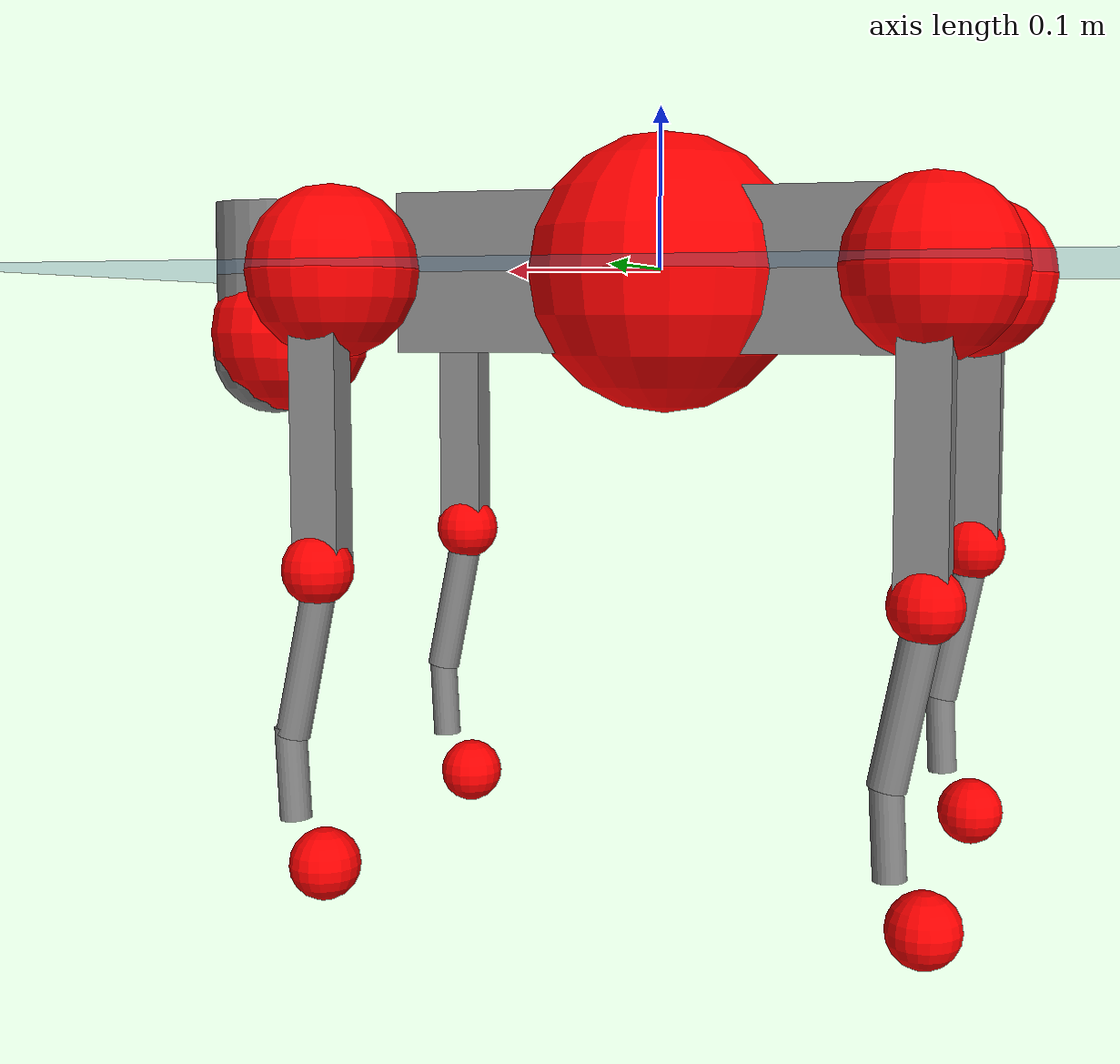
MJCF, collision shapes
<mujoco model="go2">
  <compiler angle="radian" assetdir="assets" balanceinertia="true" inertiafromgeom="false"/>

  <option timestep="0.005" density="1.2" viscosity="2e-05"/>

  <size nkey="1"/>

  <visual>
    <quality shadowsize="8192"/>
    <map shadowclip="0.5"/>
  </visual>

  <default>
    <default class="/">
      <geom contype="0" conaffinity="0" group="1" solref="-1000 -80"/>
      <site size="0.01 0.005 0.005" group="5"/>
      <general forcelimited="true" biastype="affine" gainprm="20" biasprm="0 -20 -0.5"/>
      <default class="go2">
        <joint armature="0.01" damping="0.01" frictionloss="0.2"/>
        <geom condim="1" margin="0.001"/>
        <default class="visual">
          <geom type="mesh" group="2"/>
        </default>
        <default class="collision">
          <geom group="3"/>
          <default class="foot">
            <geom size="0.022 0 0" condim="6" priority="1" friction="0.8 0.02 0.01" solimp="0.015 1 0.022"/>
          </default>
        </default>
        <default class="reward_collision_sphere">
          <geom group="5" rgba="1 0 0 1"/>
        </default>
      </default>
    </default>
  </default>

  <asset>
    <texture type="skybox" colorspace="auto" name="//unnamed_texture_0" builtin="gradient" rgb1="0.95 0.95 0.95" rgb2="0.95 0.95 0.95" width="100" height="600"/>
    <texture type="2d" colorspace="auto" name="texplane" builtin="checker" rgb1="0.345 0.575 0.748" rgb2="0.345 0.575 0.748" markrgb="1 1 1" width="512" height="512"/>
    <material name="MatPlane" class="/" texture="texplane" texuniform="true" texrepeat="2 2" specular="0.9"/>
    <material name="metal" class="/" rgba="0.9 0.95 0.95 1"/>
    <material name="black" class="/" rgba="0 0 0 1"/>
    <material name="white" class="/"/>
    <material name="gray" class="/" rgba="0.671705 0.692426 0.77427 1"/>
    <mesh name="base_0" class="/" file="base_0.obj"/>
    <mesh name="base_1" class="/" file="base_1.obj"/>
    <mesh name="base_2" class="/" file="base_2.obj"/>
    <mesh name="base_3" class="/" file="base_3.obj"/>
    <mesh name="base_4" class="/" file="base_4.obj"/>
    <mesh name="hip_0" class="/" file="hip_0.obj"/>
    <mesh name="hip_1" class="/" file="hip_1.obj"/>
    <mesh name="thigh_0" class="/" file="thigh_0.obj"/>
    <mesh name="thigh_1" class="/" file="thigh_1.obj"/>
    <mesh name="thigh_mirror_0" class="/" file="thigh_mirror_0.obj"/>
    <mesh name="thigh_mirror_1" class="/" file="thigh_mirror_1.obj"/>
    <mesh name="calf_0" class="/" file="calf_0.obj"/>
    <mesh name="calf_1" class="/" file="calf_1.obj"/>
    <mesh name="calf_mirror_0" class="/" file="calf_mirror_0.obj"/>
    <mesh name="calf_mirror_1" class="/" file="calf_mirror_1.obj"/>
    <mesh name="foot" class="/" file="foot.obj"/>
  </asset>

  <worldbody>
    <geom name="floor" class="/" size="100 100 0.125" type="plane" group="0" material="MatPlane"/>
    <light name="toplight_shadow" class="/" pos="0 0 5" dir="0.0990148 0.0990148 -0.990148" type="directional" ambient="0.04 0.04 0.04" diffuse="0.55 0.55 0.55" specular="0.12 0.12 0.12"/>
    <light name="toplight_fill" class="/" pos="0 0 5" dir="0.0990148 0.0990148 -0.990148" type="directional" castshadow="false" ambient="0.04 0.04 0.04" diffuse="0.3 0.3 0.3" specular="0.08 0.08 0.08"/>
    <body name="trunk" childclass="go2" pos="-0.00267638 -0.00107191 -0.00172218" quat="0.999999 -0.000624024 -0.00102356 0.000135962">
      <inertial pos="0.0176462 0.00151493 -0.00509139" quat="-0.0111709 0.715199 -0.0105086 0.698752" mass="4.53292" diaginertia="0.0754363 0.0404614 0.0103686"/>
      <joint name="//unnamed_joint_0" type="free" armature="0" damping="0" frictionloss="0"/>
      <geom name="//unnamed_geom_1" class="visual" material="black" mesh="base_0"/>
      <geom name="//unnamed_geom_2" class="visual" material="black" mesh="base_1"/>
      <geom name="//unnamed_geom_3" class="visual" material="black" mesh="base_2"/>
      <geom name="//unnamed_geom_4" class="visual" material="white" mesh="base_3"/>
      <geom name="//unnamed_geom_5" class="visual" material="gray" mesh="base_4"/>
      <geom name="trunk_1" class="collision" size="0.163454 0.0406244 0.0495314" type="box"/>
      <geom name="trunk_2" class="collision" size="0.0434486 0.0391037" pos="0.264768 0 0.00839865" type="cylinder"/>
      <geom name="trunk_3" class="collision" size="0.0408417" pos="0.272201 0 -0.0503919"/>
      <geom name="//unnamed_geom_9" class="reward_collision_sphere" size="0.0868972"/>
      <geom name="//unnamed_geom_10" class="reward_collision_sphere" size="0.0521383" pos="0.260123 0 -0.0377939"/>
      <site name="imu" pos="-0.0136139 -0.00991081 0.0328904" size="0.00868972"/>
      <camera name="track" pos="0 -1.67608 0" quat="0.707107 0.707107 0 0" mode="trackcom"/>
      <camera name="ego_camera" pos="0.289852 0 0.0377939" quat="-0.5 -0.5 0.5 0.5"/>
      <body name="FL_hip" pos="0.179022 0.0395709 -0.000893612" quat="0.999999 0.00058504 0.000992338 0.00056947">
        <inertial pos="-0.0067776 0.00122113 0.000310418" quat="0.487781 0.495873 0.509255 0.506794" mass="0.459694" diaginertia="0.000630391 0.000254043 0.000211574"/>
        <joint name="FL_hip_joint" pos="0 0 0" axis="0.999937 -0.00595339 -0.00954491" stiffness="0.004142" range="-0.995858 1.0531" armature="0.00996089" damping="0" frictionloss="0.18319"/>
        <geom name="//unnamed_geom_11" class="visual" material="metal" mesh="hip_0"/>
        <geom name="//unnamed_geom_12" class="visual" material="gray" mesh="hip_1"/>
        <geom name="//unnamed_geom_13" class="collision" size="0.0399727 0.0173794" pos="0 0.0670432 0" quat="0.707107 0.707107 0 0" type="cylinder"/>
        <geom name="//unnamed_geom_14" class="reward_collision_sphere" size="0.0521383" pos="0 0.0586628 0"/>
        <body name="FL_thigh" pos="-0.00163984 0.0802072 -0.000193027" quat="1 0.000171589 -9.88384e-05 -0.000260772">
          <inertial pos="-0.00426066 -0.0210625 -0.0294185" quat="0.829181 0.0850692 -0.0196534 0.55212" mass="0.76448" diaginertia="0.00405828 0.00235161 0.000362361"/>
          <joint name="FL_thigh_joint" pos="0 0 0" axis="0.00527686 0.999982 -0.0029483" stiffness="0.00885245" range="-1.576 3.53123" armature="0.00795146" damping="0.000370255" frictionloss="0.173945"/>
          <geom name="//unnamed_geom_15" class="visual" material="metal" mesh="thigh_0"/>
          <geom name="//unnamed_geom_16" class="visual" material="gray" mesh="thigh_1"/>
          <geom name="//unnamed_geom_17" class="collision" size="0.0925455 0.0106449 0.0147725" pos="0 0 -0.0894456" quat="0.707107 0 0.707107 0" type="box"/>
          <body name="FL_calf" pos="0.00202602 0.00212987 -0.176496" quat="1 2.78033e-05 -0.000119423 -0.000135081">
            <inertial pos="0.00591374 -0.00230801 -0.115993" quat="0.709791 0.00237513 -0.0038405 0.704398" mass="0.164609" diaginertia="0.00107184 0.000614272 2.22595e-05"/>
            <joint name="FL_calf_joint" pos="0 0 0" axis="0.0133357 0.999879 0.00798877" range="-2.67481 -0.891542" armature="0.00857742" damping="0.00135277" frictionloss="0.182767"/>
            <geom name="//unnamed_geom_18" class="visual" material="gray" mesh="calf_0"/>
            <geom name="//unnamed_geom_19" class="visual" material="black" mesh="calf_1"/>
            <geom name="FL_calf0" class="collision" size="0.0104277 0.0521383" pos="0.0074321 0 -0.0503919" quat="0.994493 0 -0.104807 0" type="cylinder"/>
            <geom name="//unnamed_geom_21" class="collision" size="0.00955869 0.0282416" pos="0.0185802 0 -0.1243" quat="0.999688 0 0.0249974 0" type="cylinder"/>
            <geom name="//unnamed_geom_22" class="visual" pos="0 0 -0.178891" quat="1 0 0 0" material="black" mesh="foot"/>
            <geom name="FL_foot" class="foot" size="0.0176576" pos="-0.00185802 0 -0.178891"/>
            <geom name="//unnamed_geom_24" class="reward_collision_sphere" size="0.0217243"/>
            <geom name="//unnamed_geom_25" class="reward_collision_sphere" size="0.0217243" pos="-0.00185802 0 -0.178891"/>
            <site name="FL_foot" class="foot" pos="-0.00185802 0 -0.178891" size="0.00868972"/>
          </body>
        </body>
      </body>
      <body name="FR_hip" pos="0.182042 -0.0366725 0.0026507" quat="1 -1.04262e-05 2.11496e-05 1.68568e-06">
        <inertial pos="-0.00442437 -0.00406799 -0.000252916" quat="0.487342 0.506626 0.504409 0.501399" mass="0.460205" diaginertia="0.000616107 0.000257168 0.000204178"/>
        <joint name="FR_hip_joint" pos="0 0 0" axis="1 0.000439394 0.00086781" range="-0.993343 1.0405" armature="0.00872799" damping="0.0173093" frictionloss="0.176515"/>
        <geom name="//unnamed_geom_26" class="visual" pos="0 -1.59014e-11 -6.82041e-10" quat="4.63268e-05 1 0 0" material="metal" mesh="hip_0"/>
        <geom name="//unnamed_geom_27" class="visual" pos="0 -2.57779e-11 1.68695e-09" quat="4.63268e-05 1 0 0" material="gray" mesh="hip_1"/>
        <geom name="//unnamed_geom_28" class="collision" size="0.0399727 0.0173794" pos="0 -0.0670432 0" quat="0.707107 0.707107 0 0" type="cylinder"/>
        <geom name="//unnamed_geom_29" class="reward_collision_sphere" size="0.0521383" pos="0 -0.0586628 0"/>
        <body name="FR_thigh" pos="0.00207891 -0.0794668 -0.00206661" quat="1 8.59334e-06 3.27694e-05 1.3867e-05">
          <inertial pos="-0.00385615 0.0189798 -0.0298316" quat="0.557394 -0.0140994 0.0822345 0.826045" mass="0.779873" diaginertia="0.00414718 0.00248657 0.000378072"/>
          <joint name="FR_thigh_joint" pos="0 0 0" axis="0.000718632 -1 0.000126447" stiffness="0.00355038" range="-3.54012 1.62599" armature="0.00757694" damping="0.0104502" frictionloss="0.167692"/>
          <geom name="//unnamed_geom_30" class="visual" material="metal" mesh="thigh_mirror_0"/>
          <geom name="//unnamed_geom_31" class="visual" material="gray" mesh="thigh_mirror_1"/>
          <geom name="//unnamed_geom_32" class="collision" size="0.0925455 0.0106449 0.0147725" pos="0 0 -0.0894456" quat="0.707107 0 0.707107 0" type="box"/>
          <body name="FR_calf" pos="-0.0010884 -0.00106315 -0.178583" quat="1 -3.01569e-05 3.51015e-05 8.23335e-05">
            <inertial pos="0.00497064 0.001296 -0.117008" quat="0.709544 -0.00693639 -0.00248939 0.704622" mass="0.149346" diaginertia="0.00102006 0.000606269 2.09758e-05"/>
            <joint name="FR_calf_joint" pos="0 0 0" axis="0.00110092 -0.999998 -0.00190265" range="0.848023 2.68539" armature="0.00994103" damping="0.0162645" frictionloss="0.174691"/>
            <geom name="//unnamed_geom_33" class="visual" material="gray" mesh="calf_mirror_0"/>
            <geom name="//unnamed_geom_34" class="visual" material="black" mesh="calf_mirror_1"/>
            <geom name="FR_calf0" class="collision" size="0.0112966 0.0521383" pos="0.00929012 0 -0.0503919" quat="0.995004 0 -0.0998334 0" type="cylinder"/>
            <geom name="//unnamed_geom_36" class="collision" size="0.00955869 0.0282416" pos="0.0185802 0 -0.1243" quat="0.999688 0 0.0249974 0" type="cylinder"/>
            <geom name="//unnamed_geom_37" class="visual" pos="0 0 -0.178891" quat="1 0 0 0" material="black" mesh="foot"/>
            <geom name="FR_foot" class="foot" size="0.0199686" pos="-0.00185802 0 -0.178891"/>
            <geom name="//unnamed_geom_39" class="reward_collision_sphere" size="0.0217243"/>
            <geom name="//unnamed_geom_40" class="reward_collision_sphere" size="0.0217243" pos="-0.00185802 0 -0.178891"/>
            <site name="FR_foot" class="foot" pos="-0.00185802 0 -0.178891" size="0.00868972"/>
          </body>
        </body>
      </body>
      <body name="RL_hip" pos="-0.178712 0.0370256 -0.00129394" quat="1 6.4862e-07 5.275e-05 1.03546e-05">
        <inertial pos="0.0053578 0.00290226 -0.00191381" quat="0.508912 0.49862 0.493039 0.499299" mass="0.465333" diaginertia="0.00064085 0.000241506 0.000201527"/>
        <joint name="RL_hip_joint" pos="0 0 0" axis="-0.999868 -0.0122167 0.0106872" range="-1.00388 1.1002" armature="0.00879611" damping="0" frictionloss="0.196945"/>
        <geom name="//unnamed_geom_41" class="visual" pos="-7.76614e-10 0 -1.52234e-07" quat="4.63268e-05 0 1 0" material="metal" mesh="hip_0"/>
        <geom name="//unnamed_geom_42" class="visual" pos="-1.25898e-09 0 -1.3501e-07" quat="4.63268e-05 0 1 0" material="gray" mesh="hip_1"/>
        <geom name="//unnamed_geom_43" class="collision" size="0.0399727 0.0173794" pos="0 0.0670432 0" quat="0.707107 0.707107 0 0" type="cylinder"/>
        <geom name="//unnamed_geom_44" class="reward_collision_sphere" size="0.0521383" pos="0 0.0586628 0"/>
        <body name="RL_thigh" pos="-6.36741e-05 0.0799906 0.000875989" quat="1 -2.53282e-05 1.8931e-05 1.33358e-05">
          <inertial pos="-0.0061993 -0.0194489 -0.0295403" quat="0.831325 0.0932561 -0.0293 0.547124" mass="0.775196" diaginertia="0.00404027 0.00245678 0.000359741"/>
          <joint name="RL_thigh_joint" pos="0 0 0" axis="0.0152292 0.99983 -0.0104303" range="-0.575852 4.55393" armature="0.00893634" damping="0" frictionloss="0.1692"/>
          <geom name="//unnamed_geom_45" class="visual" material="metal" mesh="thigh_0"/>
          <geom name="//unnamed_geom_46" class="visual" material="gray" mesh="thigh_1"/>
          <geom name="//unnamed_geom_47" class="collision" size="0.0925455 0.0106449 0.0147725" pos="0 0 -0.0894456" quat="0.707107 0 0.707107 0" type="box"/>
          <body name="RL_calf" pos="-0.00188125 0.000262864 -0.18219" quat="1 6.31962e-05 -5.42318e-05 -7.05744e-05">
            <inertial pos="0.00778244 -0.00279422 -0.11627" quat="0.712245 0.0108066 -0.0147314 0.701693" mass="0.15295" diaginertia="0.0010349 0.000611818 2.21e-05"/>
            <joint name="RL_calf_joint" pos="0 0 0" axis="-0.00308434 0.999993 0.00196048" range="-2.7214 -0.834561" armature="0.00835435" damping="0.00248288" frictionloss="0.192886"/>
            <geom name="//unnamed_geom_48" class="visual" material="gray" mesh="calf_0"/>
            <geom name="//unnamed_geom_49" class="visual" material="black" mesh="calf_1"/>
            <geom name="RL_calf0" class="collision" size="0.0112966 0.0521383" pos="0.00929012 0 -0.0503919" quat="0.995004 0 -0.0998334 0" type="cylinder"/>
            <geom name="//unnamed_geom_51" class="collision" size="0.00955869 0.0282416" pos="0.0185802 0 -0.1243" quat="0.999688 0 0.0249974 0" type="cylinder"/>
            <geom name="//unnamed_geom_52" class="visual" pos="0 0 -0.178891" quat="1 0 0 0" material="black" mesh="foot"/>
            <geom name="RL_foot" class="foot" size="0.0185146" pos="-0.00185802 0 -0.178891"/>
            <geom name="//unnamed_geom_54" class="reward_collision_sphere" size="0.0217243"/>
            <geom name="//unnamed_geom_55" class="reward_collision_sphere" size="0.0217243" pos="-0.00185802 0 -0.178891"/>
            <site name="RL_foot" class="foot" pos="-0.00185802 0 -0.178891" size="0.00868972"/>
          </body>
        </body>
      </body>
      <body name="RR_hip" pos="-0.179721 -0.0400924 -0.000661826" quat="1 0.000421291 0.000403983 0.000209652">
        <inertial pos="0.00527487 0.00127131 -0.0029456" quat="0.499409 0.497035 0.498449 0.50507" mass="0.439153" diaginertia="0.000602531 0.000242347 0.000195426"/>
        <joint name="RR_hip_joint" pos="0 0 0" axis="-0.999973 -0.00633614 0.00382414" stiffness="0.00288292" range="-1.02976 0.991464" armature="0.00788162" damping="0" frictionloss="0.178041"/>
        <geom name="//unnamed_geom_56" class="visual" pos="7.73464e-10 -1.59013e-11 -1.51552e-07" quat="2.14617e-09 4.63268e-05 4.63268e-05 -1" material="metal" mesh="hip_0"/>
        <geom name="//unnamed_geom_57" class="visual" pos="1.26677e-09 -2.57779e-11 -1.36697e-07" quat="2.14617e-09 4.63268e-05 4.63268e-05 -1" material="gray" mesh="hip_1"/>
        <geom name="//unnamed_geom_58" class="collision" size="0.0399727 0.0173794" pos="0 -0.0670432 0" quat="0.707107 0.707107 0 0" type="cylinder"/>
        <geom name="//unnamed_geom_59" class="reward_collision_sphere" size="0.0521383" pos="0 -0.0586628 0"/>
        <body name="RR_thigh" pos="-0.00104162 -0.0802888 0.00179971" quat="1 4.88591e-06 5.39517e-06 -8.46451e-06">
          <inertial pos="-0.00566107 0.0215621 -0.0275792" quat="0.551759 -0.0193045 0.0854536 0.829389" mass="0.703859" diaginertia="0.00404071 0.00235418 0.000366777"/>
          <joint name="RR_thigh_joint" pos="0 0 0" axis="-0.00143238 -0.999999 0.000770898" stiffness="0.0103629" range="-4.58691 0.577169" armature="0.00895453" damping="0.0143592" frictionloss="0.149444"/>
          <geom name="//unnamed_geom_60" class="visual" material="metal" mesh="thigh_mirror_0"/>
          <geom name="//unnamed_geom_61" class="visual" material="gray" mesh="thigh_mirror_1"/>
          <geom name="//unnamed_geom_62" class="collision" size="0.0925455 0.0106449 0.0147725" pos="0 0 -0.0894456" quat="0.707107 0 0.707107 0" type="box"/>
          <body name="RR_calf" pos="0.00264184 -0.000635532 -0.180088" quat="1 0.000349096 -0.000242636 0.000392677">
            <inertial pos="0.0060739 0.000532729 -0.118592" quat="0.703035 -0.00870839 0.004807 0.711086" mass="0.148047" diaginertia="0.00100854 0.000590864 2.14024e-05"/>
            <joint name="RR_calf_joint" pos="0 0 0" axis="3.78074e-05 -0.999997 0.00224031" range="0.832893 2.76742" armature="0.00814629" damping="0.00729224" frictionloss="0.169064"/>
            <geom name="//unnamed_geom_63" class="visual" material="gray" mesh="calf_mirror_0"/>
            <geom name="//unnamed_geom_64" class="visual" material="black" mesh="calf_mirror_1"/>
            <geom name="RR_calf0" class="collision" size="0.0112966 0.0521383" pos="0.00929012 0 -0.0503919" quat="0.995004 0 -0.0998334 0" type="cylinder"/>
            <geom name="//unnamed_geom_66" class="collision" size="0.00955869 0.0282416" pos="0.0185802 0 -0.1243" quat="0.999688 0 0.0249974 0" type="cylinder"/>
            <geom name="//unnamed_geom_67" class="visual" pos="0 0 -0.178891" quat="1 0 0 0" material="black" mesh="foot"/>
            <geom name="RR_foot" class="foot" size="0.0200328" pos="-0.00185802 0 -0.178891"/>
            <geom name="//unnamed_geom_69" class="reward_collision_sphere" size="0.0217243"/>
            <geom name="//unnamed_geom_70" class="reward_collision_sphere" size="0.0217243" pos="-0.00185802 0 -0.178891"/>
            <site name="RR_foot" class="foot" pos="-0.00185802 0 -0.178891" size="0.00868972"/>
          </body>
        </body>
      </body>
    </body>
  </worldbody>

  <contact>
    <pair class="/" geom1="floor" geom2="FL_foot" name="//unnamed_contact_0"/>
    <pair class="/" geom1="floor" geom2="FR_foot" name="//unnamed_contact_1"/>
    <pair class="/" geom1="floor" geom2="RL_foot" name="//unnamed_contact_2"/>
    <pair class="/" geom1="floor" geom2="RR_foot" name="//unnamed_contact_3"/>
  </contact>

  <actuator>
    <general name="FL_hip" class="/" joint="FL_hip_joint" forcerange="-19.734 19.734" gainprm="17.4328" biasprm="0 -17.4328 -0.466676"/>
    <general name="FL_thigh" class="/" joint="FL_thigh_joint" forcerange="-22.743 22.743" gainprm="17.4328" biasprm="0 -17.4328 -0.466676"/>
    <general name="FL_calf" class="/" joint="FL_calf_joint" forcerange="-35.5679 35.5679" gainprm="17.4328" biasprm="0 -17.4328 -0.466676"/>
    <general name="FR_hip" class="/" joint="FR_hip_joint" forcerange="-19.9362 19.9362" gainprm="17.4328" biasprm="0 -17.4328 -0.466676"/>
    <general name="FR_thigh" class="/" joint="FR_thigh_joint" forcerange="-22.2417 22.2417" gainprm="17.4328" biasprm="0 -17.4328 -0.466676"/>
    <general name="FR_calf" class="/" joint="FR_calf_joint" forcerange="-41.2558 41.2558" gainprm="17.4328" biasprm="0 -17.4328 -0.466676"/>
    <general name="RL_hip" class="/" joint="RL_hip_joint" forcerange="-22.464 22.464" gainprm="17.4328" biasprm="0 -17.4328 -0.466676"/>
    <general name="RL_thigh" class="/" joint="RL_thigh_joint" forcerange="-21.9025 21.9025" gainprm="17.4328" biasprm="0 -17.4328 -0.466676"/>
    <general name="RL_calf" class="/" joint="RL_calf_joint" forcerange="-39.3096 39.3096" gainprm="17.4328" biasprm="0 -17.4328 -0.466676"/>
    <general name="RR_hip" class="/" joint="RR_hip_joint" forcerange="-20.5604 20.5604" gainprm="17.4328" biasprm="0 -17.4328 -0.466676"/>
    <general name="RR_thigh" class="/" joint="RR_thigh_joint" forcerange="-19.0061 19.0061" gainprm="17.4328" biasprm="0 -17.4328 -0.466676"/>
    <general name="RR_calf" class="/" joint="RR_calf_joint" forcerange="-35.2773 35.2773" gainprm="17.4328" biasprm="0 -17.4328 -0.466676"/>
  </actuator>

  <sensor>
    <gyro site="imu" name="imu_angular_velocity"/>
    <velocimeter site="imu" name="imu_linear_velocity"/>
    <framelinvel objtype="site" objname="FL_foot" name="FL_foot_global_linear_velocity"/>
    <framelinvel objtype="site" objname="FR_foot" name="FR_foot_global_linear_velocity"/>
    <framelinvel objtype="site" objname="RL_foot" name="RL_foot_global_linear_velocity"/>
    <framelinvel objtype="site" objname="RR_foot" name="RR_foot_global_linear_velocity"/>
  </sensor>

  <keyframe>
    <key name="home" qpos="0 0 0.325 1 0 0 0 0.1 0.8 -1.5 -0.1 -0.8 1.5 -0.1 0.8 -1.5 0.1 -0.8 1.5"/>
  </keyframe>
</mujoco>
